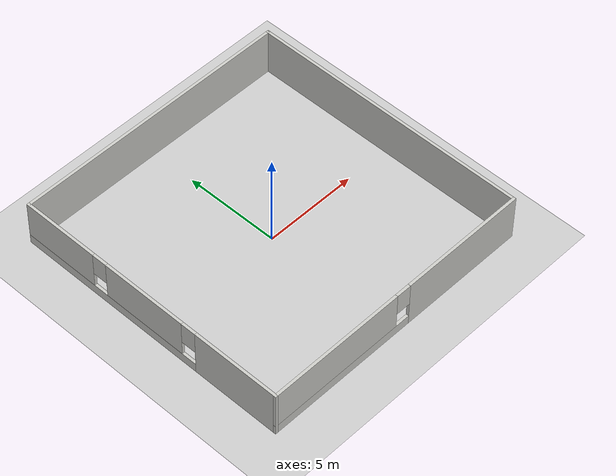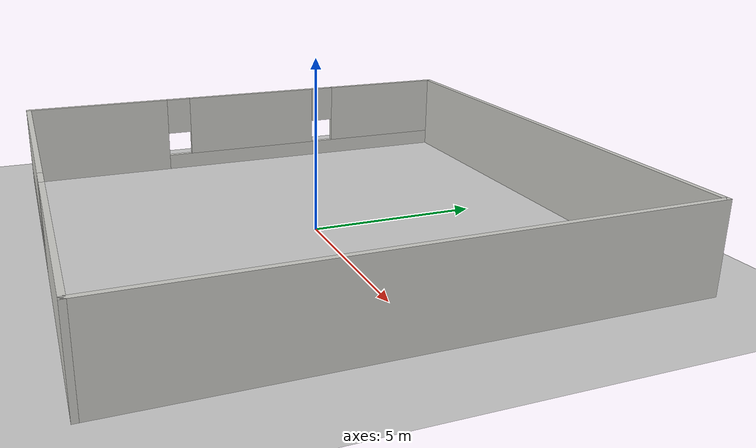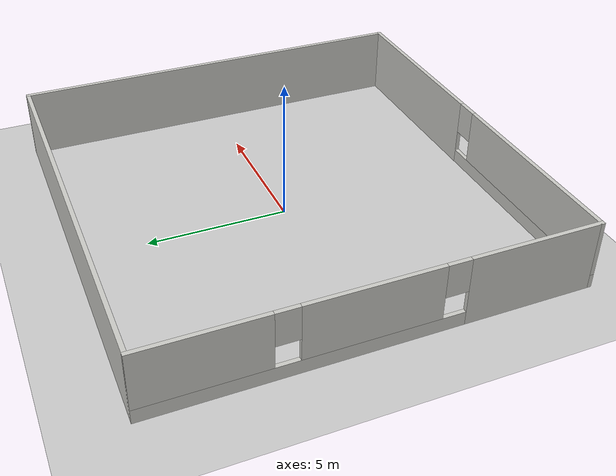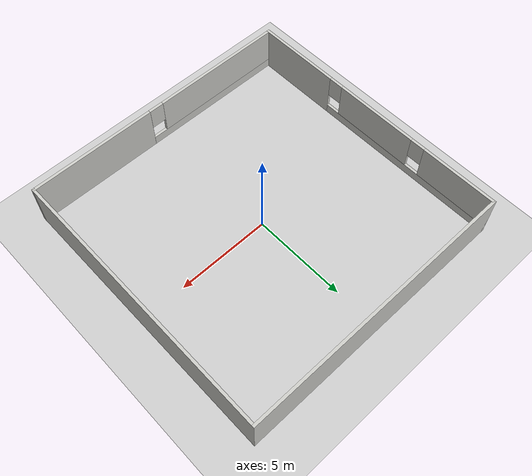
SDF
<sdf version="1.7">
 <world name="default">
  <light name="sun" type="directional">
   <pose>0 0 10 0 -0 0</pose>
   <diffuse>0.8 0.8 0.8 1</diffuse>
   <specular>0.2 0.2 0.2 1</specular>
   <attenuation>
    <range>1000</range>
    <constant>0.9</constant>
    <linear>0.01</linear>
    <quadratic>0.001</quadratic>
   </attenuation>
   <direction>-0.5 0.1 -0.9</direction>
   <spot><inner_angle>0</inner_angle><outer_angle>0</outer_angle><falloff>0</falloff></spot>
  </light>
  <model name="ground_plane">
   <static>1</static>
   <link name="link">
    <collision name="collision">
     <geometry><plane><normal>0 0 1</normal><size>100 100</size></plane></geometry>
     <surface>
      <contact><collide_bitmask>65535</collide_bitmask></contact>
      <friction><ode><mu>100</mu><mu2>50</mu2></ode></friction>
     </surface>
    </collision>
    <visual name="visual">
     <cast_shadows>0</cast_shadows>
     <geometry><plane><normal>0 0 1</normal><size>100 100</size></plane></geometry>
     <material>
      <script><uri>file://media/materials/scripts/gazebo.material</uri><name>Gazebo/Grey</name></script>
     </material>
    </visual>
   </link>
  </model>
  <gravity>0 0 -9.8</gravity>
  <magnetic_field>6e-06 2.3e-05 -4.2e-05</magnetic_field>
  <atmosphere type="adiabatic"/>
  <physics type="ode">
   <max_step_size>0.001</max_step_size>
   <real_time_factor>1</real_time_factor>
   <real_time_update_rate>1000</real_time_update_rate>
  </physics>
  <scene><ambient>0.4 0.4 0.4 1</ambient><background>0.7 0.7 0.7 1</background><shadows>1</shadows></scene>
  <spherical_coordinates>
   <surface_model>EARTH_WGS84</surface_model>
   <latitude_deg>0</latitude_deg>
   <longitude_deg>0</longitude_deg>
   <elevation>0</elevation>
   <heading_deg>0</heading_deg>
  </spherical_coordinates>
  <model name="dojo">
   <link name="Wall_10">
    <pose>0 -7.425 0 0 -0 3.14159</pose>
    <visual name="Wall_10_Visual_0">
     <pose>-4.07681 0 1.25 0 -0 0</pose>
     <geometry><box><size>6.84637 0.15 2.5</size></box></geometry>
     <material>
      <script><uri>file://media/materials/scripts/gazebo.material</uri><name>Gazebo/CeilingTiled</name></script>
      <ambient>1 1 1 1</ambient>
     </material>
     <meta><layer>0</layer></meta>
    </visual>
    <collision name="Wall_10_Collision_0">
     <geometry><box><size>6.84637 0.15 2.5</size></box></geometry>
     <pose>-4.07681 0 1.25 0 -0 0</pose>
    </collision>
    <visual name="Wall_10_Visual_1">
     <pose>3.42319 0 0.25 0 -0 0</pose>
     <geometry><box><size>8.15363 0.15 0.5</size></box></geometry>
     <material>
      <script><uri>file://media/materials/scripts/gazebo.material</uri><name>Gazebo/CeilingTiled</name></script>
      <ambient>1 1 1 1</ambient>
     </material>
     <meta><layer>0</layer></meta>
    </visual>
    <collision name="Wall_10_Collision_1">
     <geometry><box><size>8.15363 0.15 0.5</size></box></geometry>
     <pose>3.42319 0 0.25 0 -0 0</pose>
    </collision>
    <visual name="Wall_10_Visual_2">
     <pose>3.82319 0 1.5 0 -0 0</pose>
     <geometry><box><size>7.35363 0.15 2</size></box></geometry>
     <material>
      <script><uri>file://media/materials/scripts/gazebo.material</uri><name>Gazebo/CeilingTiled</name></script>
      <ambient>1 1 1 1</ambient>
     </material>
     <meta><layer>0</layer></meta>
    </visual>
    <collision name="Wall_10_Collision_2">
     <geometry><box><size>7.35363 0.15 2</size></box></geometry>
     <pose>3.82319 0 1.5 0 -0 0</pose>
    </collision>
    <visual name="Wall_10_Visual_3">
     <pose>-0.253631 0 1.9 0 -0 0</pose>
     <geometry><box><size>0.8 0.15 1.2</size></box></geometry>
     <material>
      <script><uri>file://media/materials/scripts/gazebo.material</uri><name>Gazebo/CeilingTiled</name></script>
      <ambient>1 1 1 1</ambient>
     </material>
     <meta><layer>0</layer></meta>
    </visual>
    <collision name="Wall_10_Collision_3">
     <geometry><box><size>0.8 0.15 1.2</size></box></geometry>
     <pose>-0.253631 0 1.9 0 -0 0</pose>
    </collision>
   </link>
   <link name="Wall_11">
    <pose>-7.425 0 0 0 -0 1.5708</pose>
    <visual name="Wall_11_Visual_0">
     <pose>-5.1646 0 1.25 0 -0 0</pose>
     <geometry><box><size>4.67079 0.15 2.5</size></box></geometry>
     <material>
      <script><uri>file://media/materials/scripts/gazebo.material</uri><name>Gazebo/CeilingTiled</name></script>
      <ambient>1 1 1 1</ambient>
     </material>
     <meta><layer>0</layer></meta>
    </visual>
    <collision name="Wall_11_Collision_0">
     <geometry><box><size>4.67079 0.15 2.5</size></box></geometry>
     <pose>-5.1646 0 1.25 0 -0 0</pose>
    </collision>
    <visual name="Wall_11_Visual_1">
     <pose>2.3354 0 0.25 0 -0 0</pose>
     <geometry><box><size>10.3292 0.15 0.5</size></box></geometry>
     <material>
      <script><uri>file://media/materials/scripts/gazebo.material</uri><name>Gazebo/CeilingTiled</name></script>
      <ambient>1 1 1 1</ambient>
     </material>
     <meta><layer>0</layer></meta>
    </visual>
    <collision name="Wall_11_Collision_1">
     <geometry><box><size>10.3292 0.15 0.5</size></box></geometry>
     <pose>2.3354 0 0.25 0 -0 0</pose>
    </collision>
    <visual name="Wall_11_Visual_2">
     <pose>0.255084 0 1.5 0 -0 0</pose>
     <geometry><box><size>4.56858 0.15 2</size></box></geometry>
     <material>
      <script><uri>file://media/materials/scripts/gazebo.material</uri><name>Gazebo/CeilingTiled</name></script>
      <ambient>1 1 1 1</ambient>
     </material>
     <meta><layer>0</layer></meta>
    </visual>
    <collision name="Wall_11_Collision_2">
     <geometry><box><size>4.56858 0.15 2</size></box></geometry>
     <pose>0.255084 0 1.5 0 -0 0</pose>
    </collision>
    <visual name="Wall_11_Visual_3">
     <pose>5.41969 0 1.5 0 -0 0</pose>
     <geometry><box><size>4.16062 0.15 2</size></box></geometry>
     <material>
      <script><uri>file://media/materials/scripts/gazebo.material</uri><name>Gazebo/CeilingTiled</name></script>
      <ambient>1 1 1 1</ambient>
     </material>
     <meta><layer>0</layer></meta>
    </visual>
    <collision name="Wall_11_Collision_3">
     <geometry><box><size>4.16062 0.15 2</size></box></geometry>
     <pose>5.41969 0 1.5 0 -0 0</pose>
    </collision>
    <visual name="Wall_11_Visual_4">
     <pose>-2.42921 0 1.9 0 -0 0</pose>
     <geometry><box><size>0.8 0.15 1.2</size></box></geometry>
     <material>
      <script><uri>file://media/materials/scripts/gazebo.material</uri><name>Gazebo/CeilingTiled</name></script>
      <ambient>1 1 1 1</ambient>
     </material>
     <meta><layer>0</layer></meta>
    </visual>
    <collision name="Wall_11_Collision_4">
     <geometry><box><size>0.8 0.15 1.2</size></box></geometry>
     <pose>-2.42921 0 1.9 0 -0 0</pose>
    </collision>
    <visual name="Wall_11_Visual_5">
     <pose>2.93938 0 1.9 0 -0 0</pose>
     <geometry><box><size>0.8 0.15 1.2</size></box></geometry>
     <material>
      <script><uri>file://media/materials/scripts/gazebo.material</uri><name>Gazebo/CeilingTiled</name></script>
      <ambient>1 1 1 1</ambient>
     </material>
     <meta><layer>0</layer></meta>
    </visual>
    <collision name="Wall_11_Collision_5">
     <geometry><box><size>0.8 0.15 1.2</size></box></geometry>
     <pose>2.93938 0 1.9 0 -0 0</pose>
    </collision>
   </link>
   <link name="Wall_5">
    <collision name="Wall_5_Collision">
     <geometry><box><size>15 0.15 2.5</size></box></geometry>
     <pose>0 0 1.25 0 -0 0</pose>
    </collision>
    <visual name="Wall_5_Visual">
     <pose>0 0 1.25 0 -0 0</pose>
     <geometry><box><size>15 0.15 2.5</size></box></geometry>
     <material>
      <script><uri>file://media/materials/scripts/gazebo.material</uri><name>Gazebo/CeilingTiled</name></script>
      <ambient>1 1 1 1</ambient>
     </material>
     <meta><layer>0</layer></meta>
    </visual>
    <pose>0 7.425 0 0 -0 0</pose>
   </link>
   <link name="Wall_9">
    <collision name="Wall_9_Collision">
     <geometry><box><size>15 0.15 2.5</size></box></geometry>
     <pose>0 0 1.25 0 -0 0</pose>
    </collision>
    <visual name="Wall_9_Visual">
     <pose>0 0 1.25 0 -0 0</pose>
     <geometry><box><size>15 0.15 2.5</size></box></geometry>
     <material>
      <script><uri>file://media/materials/scripts/gazebo.material</uri><name>Gazebo/CeilingTiled</name></script>
      <ambient>1 1 1 1</ambient>
     </material>
     <meta><layer>0</layer></meta>
    </visual>
    <pose>7.425 0 0 0 -0 -1.5708</pose>
   </link>
   <static>1</static>
  </model>
  <plugin name="ActorPosesPlugin" filename="libActorPosesPlugin.so"/>
 </world>
</sdf>
